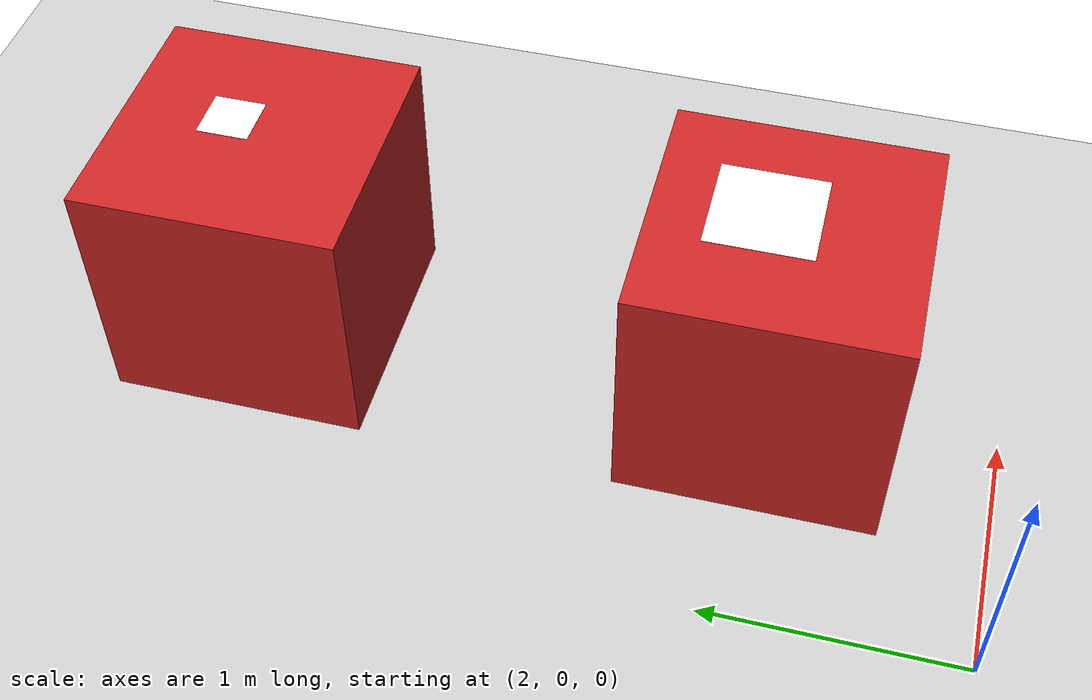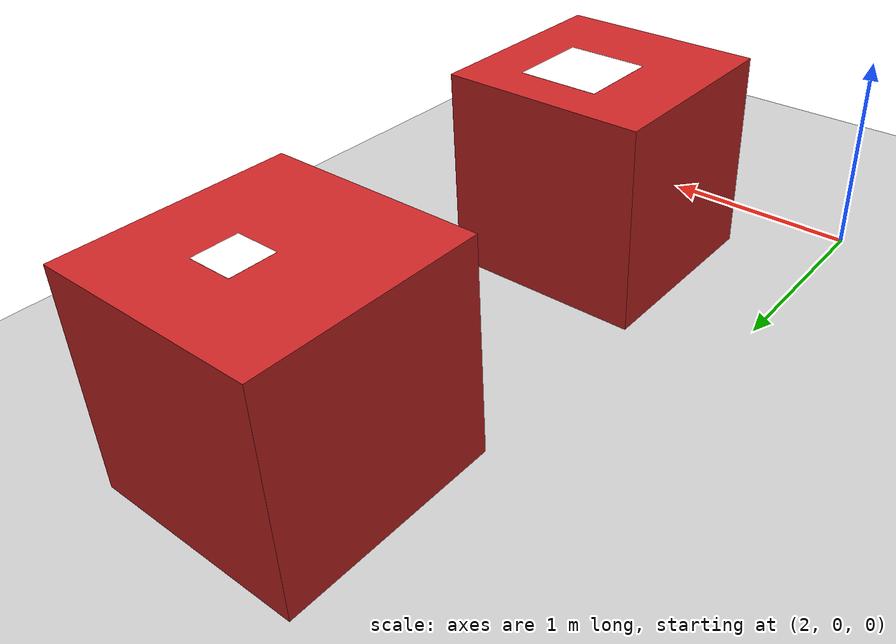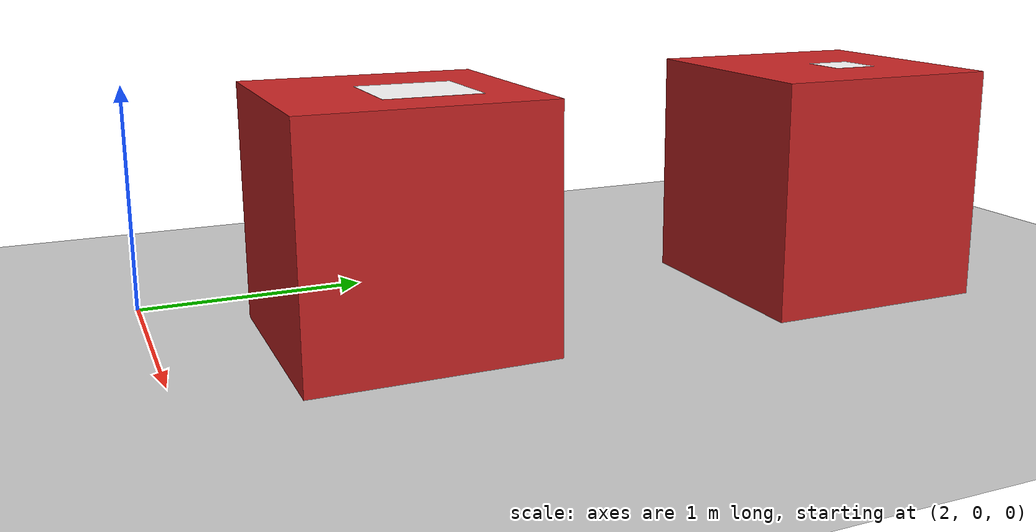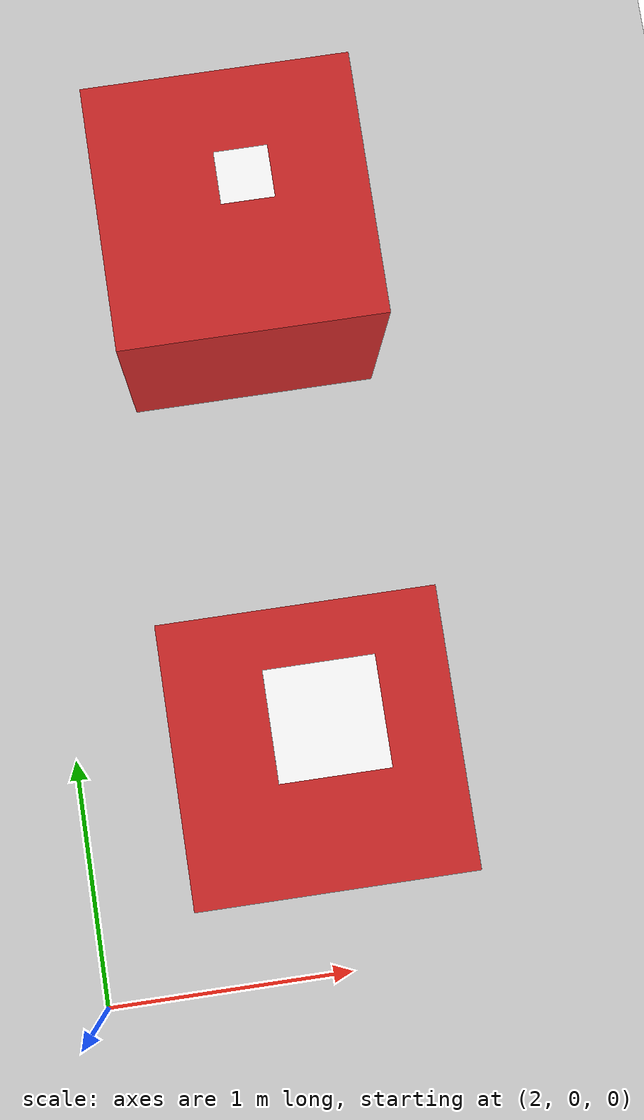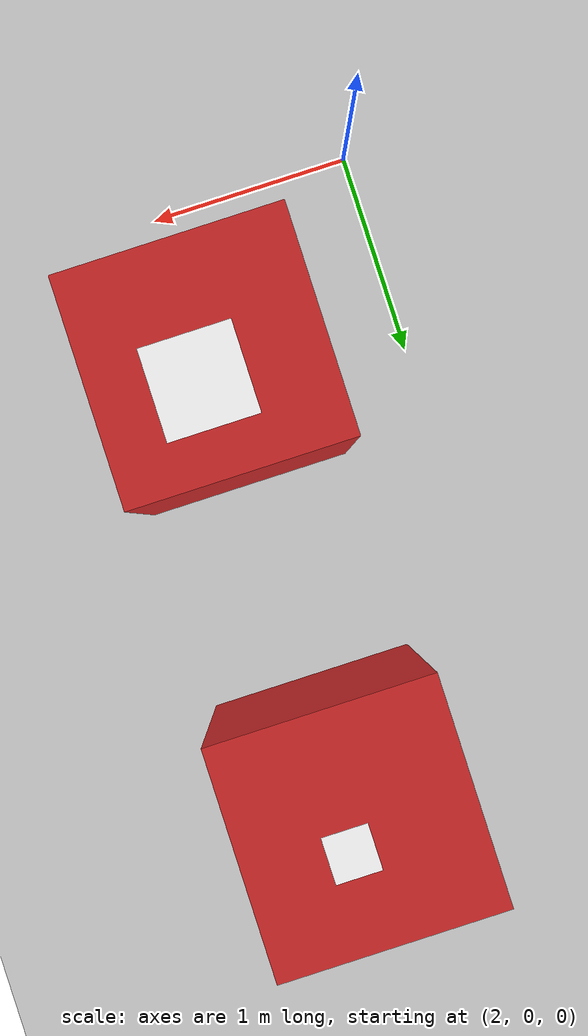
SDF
<?xml version="1.0" ?>
<sdf version="1.5">
  <world name="default">
    <!-- A global light source -->
    <include>
      <uri>model://sun</uri>
    </include>
    <!-- A ground plane -->
    <include>
      <uri>model://ground_plane</uri>
    </include>
    <include>
      <uri>model://asphalt_plane</uri>
    </include>
    <physics name='default_physics' default='0' type='ode'>
      <gravity>0 0 -9.8066</gravity>
      <ode>
        <solver>
          <type>quick</type>
          <iters>10</iters>
          <sor>1.3</sor>
          <use_dynamic_moi_rescaling>0</use_dynamic_moi_rescaling>
        </solver>
        <constraints>
          <cfm>0</cfm>
          <erp>0.2</erp>
          <contact_max_correcting_vel>100</contact_max_correcting_vel>
          <contact_surface_layer>0.001</contact_surface_layer>
        </constraints>
      </ode>
      <max_step_size>0.004</max_step_size>
      <real_time_factor>1</real_time_factor>
      <real_time_update_rate>250</real_time_update_rate>
      <magnetic_field>6.0e-6 2.3e-5 -4.2e-5</magnetic_field>
    </physics>
     <model name='unit_box'>
      <link name='link'>
        <inertial>
          <mass>1</mass>
          <inertia>
            <ixx>0.166667</ixx>
            <ixy>0</ixy>
            <ixz>0</ixz>
            <iyy>0.166667</iyy>
            <iyz>0</iyz>
            <izz>0.166667</izz>
          </inertia>
          <pose frame=''>0 0 0 0 -0 0</pose>
        </inertial>
        <self_collide>0</self_collide>
        <enable_wind>0</enable_wind>
        <kinematic>0</kinematic>
        <pose frame=''>0 0 0 0 -0 0</pose>
        <gravity>1</gravity>
        <visual name='ModelPreview_6::link::visual_1'>
          <geometry>
            <box>
              <size>1 1 1</size>
            </box>
          </geometry>
          <material>
            <script>
              <name>Gazebo/Red</name>
              <uri>file://media/materials/scripts/gazebo.material</uri>
            </script>
            <shader type='pixel'>
              <normal_map>__default__</normal_map>
            </shader>
            <ambient>1 0.3 0.3 1</ambient>
            <diffuse>1 0.7 0.7 1</diffuse>
            <specular>1 0.01 0.01 1</specular>
            <emissive>1 0 0 1</emissive>
          </material>
          <pose frame=''>0 0 0 0 -0 0</pose>
          <transparency>0</transparency>
          <cast_shadows>1</cast_shadows>
        </visual>
        <visual name='visual'>
          <geometry>
            <box>
              <size>1 1 1</size>
            </box>
          </geometry>

          <pose frame=''>0 0 0 0 -0 0</pose>
          <transparency>0</transparency>
          <cast_shadows>1</cast_shadows>
        </visual>
        <collision name='collision'>
          <laser_retro>0</laser_retro>
          <max_contacts>10</max_contacts>
          <pose frame=''>0 0 0 0 -0 0</pose>
          <geometry>
            <box>
              <size>1 1 1</size>
            </box>
          </geometry>
          <surface>
            <friction>
              <ode>
                <mu>1</mu>
                <mu2>1</mu2>
                <fdir1>0 0 0</fdir1>
                <slip1>0</slip1>
                <slip2>0</slip2>
              </ode>
              <torsional>
                <coefficient>1</coefficient>
                <patch_radius>0</patch_radius>
                <surface_radius>0</surface_radius>
                <use_patch_radius>1</use_patch_radius>
                <ode>
                  <slip>0</slip>
                </ode>
              </torsional>
            </friction>
            <bounce>
              <restitution_coefficient>0</restitution_coefficient>
              <threshold>1e+06</threshold>
            </bounce>
            <contact>
              <collide_without_contact>0</collide_without_contact>
              <collide_without_contact_bitmask>1</collide_without_contact_bitmask>
              <collide_bitmask>1</collide_bitmask>
              <ode>
                <soft_cfm>0</soft_cfm>
                <soft_erp>0.2</soft_erp>
                <kp>1e+13</kp>
                <kd>1</kd>
                <max_vel>0.01</max_vel>
                <min_depth>0</min_depth>
              </ode>
              <bullet>
                <split_impulse>1</split_impulse>
                <split_impulse_penetration_threshold>-0.01</split_impulse_penetration_threshold>
                <soft_cfm>0</soft_cfm>
                <soft_erp>0.2</soft_erp>
                <kp>1e+13</kp>
                <kd>1</kd>
              </bullet>
            </contact>
          </surface>
        </collision>
      </link>
      <static>0</static>
      <allow_auto_disable>1</allow_auto_disable>
      <pose frame=''>2.948390 2.909995 0.549947 -0.0001 1e-06 -0.000176</pose>
    </model>
    <model name='aruco_visual_marker_7'>
      <pose frame=''>3 3 1.05 0 0 0</pose>
      <link name='marker'>
        <visual name='visual'>
          <geometry>
            <box>
              <size>0.2 0.2 0.001</size>
            </box>
          </geometry>
          <material>
            <script>
              <uri>model://aruco_visual_marker_7/materials/scripts</uri>
              <uri>model://aruco_visual_marker_7/materials/textures</uri>
              <name>ArucoVisualMarker7/Marker</name>
            </script>
            <ambient>1 1 1 1</ambient>
            <diffuse>1 1 1 1</diffuse>
            <specular>0 0 0 1</specular>
            <emissive>1 1 1 0</emissive>
            <shader type='vertex'>
              <normal_map>__default__</normal_map>
            </shader>
          </material>
          <pose frame=''>0 0 0 0 -0 0</pose>
          <cast_shadows>1</cast_shadows>
          <transparency>0</transparency>
        </visual>
        <collision name='collision'>
          <laser_retro>0</laser_retro>
          <max_contacts>10</max_contacts>
          <pose frame=''>0 0 0 0 -0 0</pose>
          <geometry>
            <box>
              <size>0.1778 0.1778 0</size>
            </box>
          </geometry>
          <surface>
            <contact>
              <ode/>
            </contact>
            <bounce/>
            <friction>
              <torsional>
                <ode/>
              </torsional>
              <ode/>
            </friction>
          </surface>
        </collision>
        <self_collide>0</self_collide>
        <enable_wind>0</enable_wind>
        <kinematic>0</kinematic>
      </link>
      <link name='marker_pad'>
        <pose frame='marker'>0 0 -1e-05 0 -0 0</pose>
        <visual name='visual'>
          <geometry>
            <box>
              <size>0.1778 0.1778 0</size>
            </box>
          </geometry>
          <material>
            <lighting>1</lighting>
            <script>
              <uri>file://media/materials/scripts/gazebo.material</uri>
              <name>Gazebo/White</name>
            </script>
            <ambient>0.3 0.3 0.3 1</ambient>
            <diffuse>0.7 0.7 0.7 1</diffuse>
            <specular>0.01 0.01 0.01 1</specular>
            <emissive>1 1 1 0</emissive>
            <shader type='vertex'>
              <normal_map>__default__</normal_map>
            </shader>
          </material>
          <cast_shadows>1</cast_shadows>
          <transparency>0</transparency>
        </visual>
        <collision name='collision'>
          <laser_retro>0</laser_retro>
          <max_contacts>10</max_contacts>
          <pose frame=''>0 0 0 0 -0 0</pose>
          <geometry>
            <box>
              <size>0.1778 0.1778 0</size>
            </box>
          </geometry>
          <surface>
            <contact>
              <ode/>
            </contact>
            <bounce/>
            <friction>
              <torsional>
                <ode/>
              </torsional>
              <ode/>
            </friction>
          </surface>
        </collision>
        <self_collide>0</self_collide>
        <enable_wind>0</enable_wind>
        <kinematic>0</kinematic>
      </link>
      <joint name='marker_JOINT_marker_pad' type='revolute'>
        <parent>marker</parent>
        <child>marker_pad</child>
        <pose frame=''>0 0 0 0 -0 0</pose>
        <axis>
          <xyz>0 0 1</xyz>
          <limit>
            <upper>0</upper>
            <lower>0</lower>
          </limit>
          <use_parent_model_frame>0</use_parent_model_frame>
          <dynamics>
            <spring_reference>0</spring_reference>
            <spring_stiffness>0</spring_stiffness>
          </dynamics>
        </axis>
      </joint>
      <static>1</static>
      <allow_auto_disable>1</allow_auto_disable>
      <pose frame=''>1.46856 0.501725 0 0 -0 0</pose>
    </model>
<model name='unit_box_2'>
      <link name='link'>
        <inertial>
          <mass>1</mass>
          <inertia>
            <ixx>0.166667</ixx>
            <ixy>0</ixy>
            <ixz>0</ixz>
            <iyy>0.166667</iyy>
            <iyz>0</iyz>
            <izz>0.166667</izz>
          </inertia>
          <pose frame=''>0 0 0 0 -0 0</pose>
        </inertial>
        <self_collide>0</self_collide>
        <enable_wind>0</enable_wind>
        <kinematic>0</kinematic>
        <pose frame=''>0 0 0 0 -0 0</pose>
        <gravity>1</gravity>
        <visual name='ModelPreview_6::link::visual_1'>
          <geometry>
            <box>
              <size>1 1 1</size>
            </box>
          </geometry>
          <material>
            <script>
              <name>Gazebo/Red</name>
              <uri>file://media/materials/scripts/gazebo.material</uri>
            </script>
            <shader type='pixel'>
              <normal_map>__default__</normal_map>
            </shader>
            <ambient>1 0.3 0.3 1</ambient>
            <diffuse>1 0.7 0.7 1</diffuse>
            <specular>1 0.01 0.01 1</specular>
            <emissive>1 0 0 1</emissive>
          </material>
          <pose frame=''>0 0 0 0 -0 0</pose>
          <transparency>0</transparency>
          <cast_shadows>1</cast_shadows>
        </visual>
        <visual name='visual'>
          <geometry>
            <box>
              <size>1 1 1</size>
            </box>
          </geometry>

          <pose frame=''>0 0 0 0 -0 0</pose>
          <transparency>0</transparency>
          <cast_shadows>1</cast_shadows>
        </visual>
        <collision name='collision'>
          <laser_retro>0</laser_retro>
          <max_contacts>10</max_contacts>
          <pose frame=''>0 0 0 0 -0 0</pose>
          <geometry>
            <box>
              <size>1 1 1</size>
            </box>
          </geometry>
          <surface>
            <friction>
              <ode>
                <mu>1</mu>
                <mu2>1</mu2>
                <fdir1>0 0 0</fdir1>
                <slip1>0</slip1>
                <slip2>0</slip2>
              </ode>
              <torsional>
                <coefficient>1</coefficient>
                <patch_radius>0</patch_radius>
                <surface_radius>0</surface_radius>
                <use_patch_radius>1</use_patch_radius>
                <ode>
                  <slip>0</slip>
                </ode>
              </torsional>
            </friction>
            <bounce>
              <restitution_coefficient>0</restitution_coefficient>
              <threshold>1e+06</threshold>
            </bounce>
            <contact>
              <collide_without_contact>0</collide_without_contact>
              <collide_without_contact_bitmask>1</collide_without_contact_bitmask>
              <collide_bitmask>1</collide_bitmask>
              <ode>
                <soft_cfm>0</soft_cfm>
                <soft_erp>0.2</soft_erp>
                <kp>1e+13</kp>
                <kd>1</kd>
                <max_vel>0.01</max_vel>
                <min_depth>0</min_depth>
              </ode>
              <bullet>
                <split_impulse>1</split_impulse>
                <split_impulse_penetration_threshold>-0.01</split_impulse_penetration_threshold>
                <soft_cfm>0</soft_cfm>
                <soft_erp>0.2</soft_erp>
                <kp>1e+13</kp>
                <kd>1</kd>
              </bullet>
            </contact>
          </surface>
        </collision>
      </link>
      <static>0</static>
      <allow_auto_disable>1</allow_auto_disable>
      <pose frame=''>2.948390 0.909995 0.549947 -0.0001 1e-06 -0.000176</pose>
    </model>
    <model name='aruco_visual_marker_7_2'>
      <pose frame=''>3 1 1.05 0 0 0</pose>
      <link name='marker'>
        <visual name='visual'>
          <geometry>
            <box>
              <size>0.4 0.4 0.001</size>
            </box>
          </geometry>
          <material>
            <script>
              <uri>model://aruco_visual_marker_7/materials/scripts</uri>
              <uri>model://aruco_visual_marker_7/materials/textures</uri>
              <name>ArucoVisualMarker7/Marker</name>
            </script>
            <ambient>1 1 1 1</ambient>
            <diffuse>1 1 1 1</diffuse>
            <specular>0 0 0 1</specular>
            <emissive>1 1 1 0</emissive>
            <shader type='vertex'>
              <normal_map>__default__</normal_map>
            </shader>
          </material>
          <pose frame=''>0 0 0 0 -0 0</pose>
          <cast_shadows>1</cast_shadows>
          <transparency>0</transparency>
        </visual>
        <collision name='collision'>
          <laser_retro>0</laser_retro>
          <max_contacts>10</max_contacts>
          <pose frame=''>0 0 0 0 -0 0</pose>
          <geometry>
            <box>
              <size>0.1778 0.1778 0</size>
            </box>
          </geometry>
          <surface>
            <contact>
              <ode/>
            </contact>
            <bounce/>
            <friction>
              <torsional>
                <ode/>
              </torsional>
              <ode/>
            </friction>
          </surface>
        </collision>
        <self_collide>0</self_collide>
        <enable_wind>0</enable_wind>
        <kinematic>0</kinematic>
      </link>
      <link name='marker_pad_2'>
        <pose frame='marker'>0 0 -1e-05 0 -0 0</pose>
        <visual name='visual'>
          <geometry>
            <box>
              <size>0.1778 0.1778 0</size>
            </box>
          </geometry>
          <material>
            <lighting>1</lighting>
            <script>
              <uri>file://media/materials/scripts/gazebo.material</uri>
              <name>Gazebo/White</name>
            </script>
            <ambient>0.3 0.3 0.3 1</ambient>
            <diffuse>0.7 0.7 0.7 1</diffuse>
            <specular>0.01 0.01 0.01 1</specular>
            <emissive>1 1 1 0</emissive>
            <shader type='vertex'>
              <normal_map>__default__</normal_map>
            </shader>
          </material>
          <cast_shadows>1</cast_shadows>
          <transparency>0</transparency>
        </visual>
        <collision name='collision'>
          <laser_retro>0</laser_retro>
          <max_contacts>10</max_contacts>
          <pose frame=''>0 0 0 0 -0 0</pose>
          <geometry>
            <box>
              <size>0.1778 0.1778 0</size>
            </box>
          </geometry>
          <surface>
            <contact>
              <ode/>
            </contact>
            <bounce/>
            <friction>
              <torsional>
                <ode/>
              </torsional>
              <ode/>
            </friction>
          </surface>
        </collision>
        <self_collide>0</self_collide>
        <enable_wind>0</enable_wind>
        <kinematic>0</kinematic>
      </link>
      <joint name='marker_JOINT_marker_pad_2' type='revolute'>
        <parent>marker</parent>
        <child>marker_pad</child>
        <pose frame=''>0 0 0 0 -0 0</pose>
        <axis>
          <xyz>0 0 1</xyz>
          <limit>
            <upper>0</upper>
            <lower>0</lower>
          </limit>
          <use_parent_model_frame>0</use_parent_model_frame>
          <dynamics>
            <spring_reference>0</spring_reference>
            <spring_stiffness>0</spring_stiffness>
          </dynamics>
        </axis>
      </joint>
      <static>1</static>
      <allow_auto_disable>1</allow_auto_disable>
      <pose frame=''>1.46856 0.501725 0 0 -0 0</pose>
    </model>
  </world>
</sdf>
